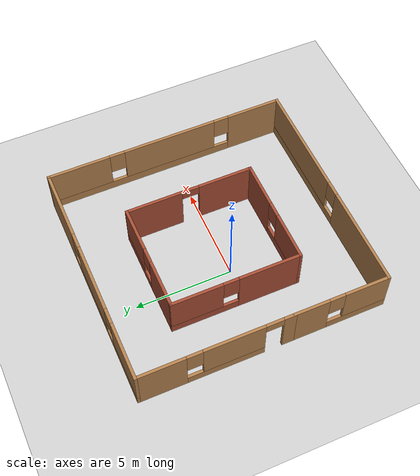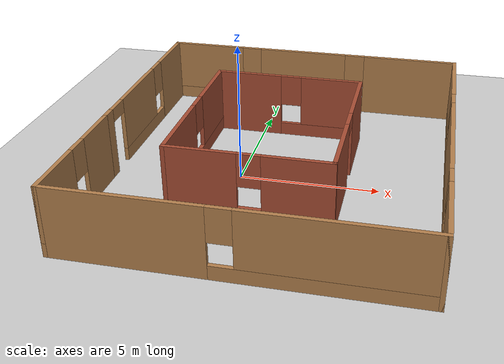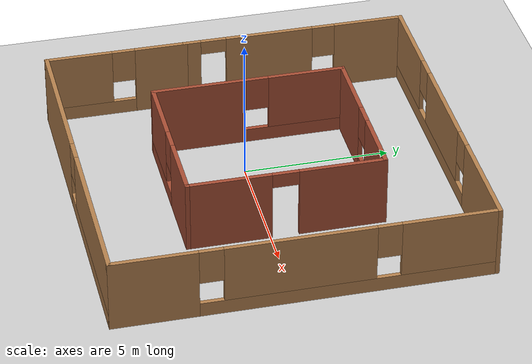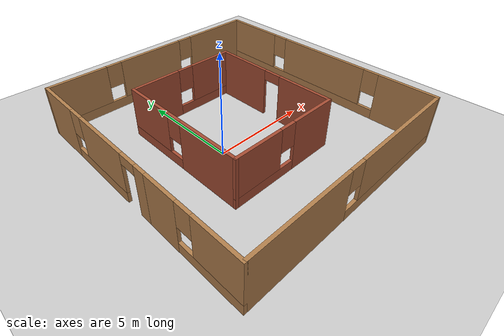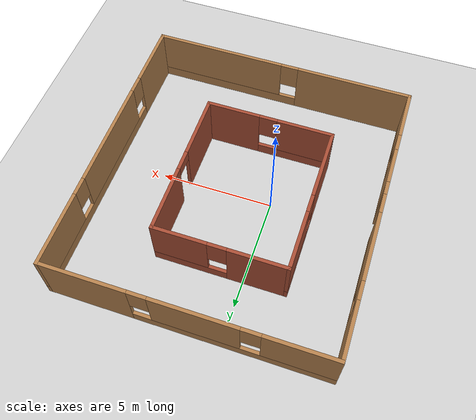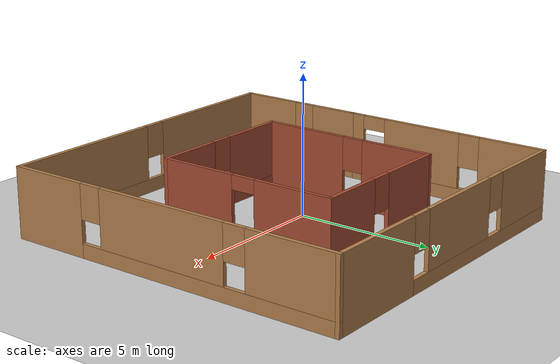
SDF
<sdf version="1.7">
 <world name="default">
  <light name="sun" type="directional">
   <pose>0 0 10 0 -0 0</pose>
   <diffuse>0.8 0.8 0.8 1</diffuse>
   <specular>0.2 0.2 0.2 1</specular>
   <attenuation>
    <range>1000</range>
    <constant>0.9</constant>
    <linear>0.01</linear>
    <quadratic>0.001</quadratic>
   </attenuation>
   <direction>-0.5 0.1 -0.9</direction>
   <spot><inner_angle>0</inner_angle><outer_angle>0</outer_angle><falloff>0</falloff></spot>
  </light>
  <model name="ground_plane">
   <static>1</static>
   <link name="link">
    <collision name="collision">
     <geometry><plane><normal>0 0 1</normal><size>100 100</size></plane></geometry>
     <surface>
      <contact><collide_bitmask>65535</collide_bitmask></contact>
      <friction><ode><mu>100</mu><mu2>50</mu2></ode></friction>
     </surface>
    </collision>
    <visual name="visual">
     <cast_shadows>0</cast_shadows>
     <geometry><plane><normal>0 0 1</normal><size>100 100</size></plane></geometry>
     <material>
      <script><uri>file://media/materials/scripts/gazebo.material</uri><name>Gazebo/Grey</name></script>
     </material>
    </visual>
   </link>
  </model>
  <gravity>0 0 -9.8</gravity>
  <magnetic_field>6e-06 2.3e-05 -4.2e-05</magnetic_field>
  <atmosphere type="adiabatic"/>
  <physics type="ode">
   <max_step_size>0.001</max_step_size>
   <real_time_factor>1</real_time_factor>
   <real_time_update_rate>1000</real_time_update_rate>
  </physics>
  <scene><ambient>0.4 0.4 0.4 1</ambient><background>0.7 0.7 0.7 1</background><shadows>1</shadows></scene>
  <audio><device>default</device></audio>
  <spherical_coordinates>
   <surface_model>EARTH_WGS84</surface_model>
   <latitude_deg>0</latitude_deg>
   <longitude_deg>0</longitude_deg>
   <elevation>0</elevation>
   <heading_deg>0</heading_deg>
  </spherical_coordinates>
  <model name="mine">
   <pose>1.36682 0.354875 0 0 -0 0</pose>
   <link name="Wall_1">
    <pose>-5.925 -3.875 0 0 -0 -1.5708</pose>
    <visual name="Wall_1_Visual_0">
     <pose>-1.57271 0 1.25 0 -0 0</pose>
     <geometry><box><size>1.85458 0.15 2.5</size></box></geometry>
     <material>
      <script><uri>file://media/materials/scripts/gazebo.material</uri><name>Gazebo/Wood</name></script>
      <ambient>1 1 1 1</ambient>
     </material>
     <meta><layer>0</layer></meta>
    </visual>
    <collision name="Wall_1_Collision_0">
     <geometry><box><size>1.85458 0.15 2.5</size></box></geometry>
     <pose>-1.57271 0 1.25 0 -0 0</pose>
    </collision>
    <visual name="Wall_1_Visual_1">
     <pose>0.927292 0 0.25 0 -0 0</pose>
     <geometry><box><size>3.14542 0.15 0.5</size></box></geometry>
     <material>
      <script><uri>file://media/materials/scripts/gazebo.material</uri><name>Gazebo/Wood</name></script>
      <ambient>1 1 1 1</ambient>
     </material>
     <meta><layer>0</layer></meta>
    </visual>
    <collision name="Wall_1_Collision_1">
     <geometry><box><size>3.14542 0.15 0.5</size></box></geometry>
     <pose>0.927292 0 0.25 0 -0 0</pose>
    </collision>
    <visual name="Wall_1_Visual_2">
     <pose>1.32729 0 1.5 0 -0 0</pose>
     <geometry><box><size>2.34542 0.15 2</size></box></geometry>
     <material>
      <script><uri>file://media/materials/scripts/gazebo.material</uri><name>Gazebo/Wood</name></script>
      <ambient>1 1 1 1</ambient>
     </material>
     <meta><layer>0</layer></meta>
    </visual>
    <collision name="Wall_1_Collision_2">
     <geometry><box><size>2.34542 0.15 2</size></box></geometry>
     <pose>1.32729 0 1.5 0 -0 0</pose>
    </collision>
    <visual name="Wall_1_Visual_3">
     <pose>-0.245417 0 1.9 0 -0 0</pose>
     <geometry><box><size>0.8 0.15 1.2</size></box></geometry>
     <material>
      <script><uri>file://media/materials/scripts/gazebo.material</uri><name>Gazebo/Wood</name></script>
      <ambient>1 1 1 1</ambient>
     </material>
     <meta><layer>0</layer></meta>
    </visual>
    <collision name="Wall_1_Collision_3">
     <geometry><box><size>0.8 0.15 1.2</size></box></geometry>
     <pose>-0.245417 0 1.9 0 -0 0</pose>
    </collision>
   </link>
   <link name="Wall_10">
    <pose>-3.18788 0.190621 0 0 -0 1.5708</pose>
    <visual name="Wall_10_Visual_0">
     <pose>-1.74602 0 1.25 0 -0 0</pose>
     <geometry><box><size>3.25796 0.15 2.5</size></box></geometry>
     <material>
      <script><uri>file://media/materials/scripts/gazebo.material</uri><name>Gazebo/Bricks</name></script>
      <ambient>1 1 1 1</ambient>
     </material>
     <meta><layer>0</layer></meta>
    </visual>
    <collision name="Wall_10_Collision_0">
     <geometry><box><size>3.25796 0.15 2.5</size></box></geometry>
     <pose>-1.74602 0 1.25 0 -0 0</pose>
    </collision>
    <visual name="Wall_10_Visual_1">
     <pose>1.62898 0 0.25 0 -0 0</pose>
     <geometry><box><size>3.49204 0.15 0.5</size></box></geometry>
     <material>
      <script><uri>file://media/materials/scripts/gazebo.material</uri><name>Gazebo/Bricks</name></script>
      <ambient>1 1 1 1</ambient>
     </material>
     <meta><layer>0</layer></meta>
    </visual>
    <collision name="Wall_10_Collision_1">
     <geometry><box><size>3.49204 0.15 0.5</size></box></geometry>
     <pose>1.62898 0 0.25 0 -0 0</pose>
    </collision>
    <visual name="Wall_10_Visual_2">
     <pose>2.02898 0 1.5 0 -0 0</pose>
     <geometry><box><size>2.69204 0.15 2</size></box></geometry>
     <material>
      <script><uri>file://media/materials/scripts/gazebo.material</uri><name>Gazebo/Bricks</name></script>
      <ambient>1 1 1 1</ambient>
     </material>
     <meta><layer>0</layer></meta>
    </visual>
    <collision name="Wall_10_Collision_2">
     <geometry><box><size>2.69204 0.15 2</size></box></geometry>
     <pose>2.02898 0 1.5 0 -0 0</pose>
    </collision>
    <visual name="Wall_10_Visual_3">
     <pose>0.282964 0 1.9 0 -0 0</pose>
     <geometry><box><size>0.8 0.15 1.2</size></box></geometry>
     <material>
      <script><uri>file://media/materials/scripts/gazebo.material</uri><name>Gazebo/Bricks</name></script>
      <ambient>1 1 1 1</ambient>
     </material>
     <meta><layer>0</layer></meta>
    </visual>
    <collision name="Wall_10_Collision_3">
     <geometry><box><size>0.8 0.15 1.2</size></box></geometry>
     <pose>0.282964 0 1.9 0 -0 0</pose>
    </collision>
   </link>
   <link name="Wall_2">
    <pose>-0 -6.3 0 0 -0 0</pose>
    <visual name="Wall_2_Visual_0">
     <pose>-3.38599 0 1.25 0 -0 0</pose>
     <geometry><box><size>5.22802 0.15 2.5</size></box></geometry>
     <material>
      <script><uri>file://media/materials/scripts/gazebo.material</uri><name>Gazebo/Wood</name></script>
      <ambient>1 1 1 1</ambient>
     </material>
     <meta><layer>0</layer></meta>
    </visual>
    <collision name="Wall_2_Collision_0">
     <geometry><box><size>5.22802 0.15 2.5</size></box></geometry>
     <pose>-3.38599 0 1.25 0 -0 0</pose>
    </collision>
    <visual name="Wall_2_Visual_1">
     <pose>2.61401 0 0.25 0 -0 0</pose>
     <geometry><box><size>6.77198 0.15 0.5</size></box></geometry>
     <material>
      <script><uri>file://media/materials/scripts/gazebo.material</uri><name>Gazebo/Wood</name></script>
      <ambient>1 1 1 1</ambient>
     </material>
     <meta><layer>0</layer></meta>
    </visual>
    <collision name="Wall_2_Collision_1">
     <geometry><box><size>6.77198 0.15 0.5</size></box></geometry>
     <pose>2.61401 0 0.25 0 -0 0</pose>
    </collision>
    <visual name="Wall_2_Visual_2">
     <pose>3.01401 0 1.5 0 -0 0</pose>
     <geometry><box><size>5.97198 0.15 2</size></box></geometry>
     <material>
      <script><uri>file://media/materials/scripts/gazebo.material</uri><name>Gazebo/Wood</name></script>
      <ambient>1 1 1 1</ambient>
     </material>
     <meta><layer>0</layer></meta>
    </visual>
    <collision name="Wall_2_Collision_2">
     <geometry><box><size>5.97198 0.15 2</size></box></geometry>
     <pose>3.01401 0 1.5 0 -0 0</pose>
    </collision>
    <visual name="Wall_2_Visual_3">
     <pose>-0.37198 0 1.9 0 -0 0</pose>
     <geometry><box><size>0.8 0.15 1.2</size></box></geometry>
     <material>
      <script><uri>file://media/materials/scripts/gazebo.material</uri><name>Gazebo/Wood</name></script>
      <ambient>1 1 1 1</ambient>
     </material>
     <meta><layer>0</layer></meta>
    </visual>
    <collision name="Wall_2_Collision_3">
     <geometry><box><size>0.8 0.15 1.2</size></box></geometry>
     <pose>-0.37198 0 1.9 0 -0 0</pose>
    </collision>
   </link>
   <link name="Wall_3">
    <pose>5.925 -0 0 0 -0 1.5708</pose>
    <visual name="Wall_3_Visual_0">
     <pose>-4.9207 0 1.25 0 -0 0</pose>
     <geometry><box><size>2.9086 0.15 2.5</size></box></geometry>
     <material>
      <script><uri>file://media/materials/scripts/gazebo.material</uri><name>Gazebo/Wood</name></script>
      <ambient>1 1 1 1</ambient>
     </material>
     <meta><layer>0</layer></meta>
    </visual>
    <collision name="Wall_3_Collision_0">
     <geometry><box><size>2.9086 0.15 2.5</size></box></geometry>
     <pose>-4.9207 0 1.25 0 -0 0</pose>
    </collision>
    <visual name="Wall_3_Visual_1">
     <pose>1.4543 0 0.25 0 -0 0</pose>
     <geometry><box><size>9.8414 0.15 0.5</size></box></geometry>
     <material>
      <script><uri>file://media/materials/scripts/gazebo.material</uri><name>Gazebo/Wood</name></script>
      <ambient>1 1 1 1</ambient>
     </material>
     <meta><layer>0</layer></meta>
    </visual>
    <collision name="Wall_3_Collision_1">
     <geometry><box><size>9.8414 0.15 0.5</size></box></geometry>
     <pose>1.4543 0 0.25 0 -0 0</pose>
    </collision>
    <visual name="Wall_3_Visual_2">
     <pose>-0.190162 0 1.5 0 -0 0</pose>
     <geometry><box><size>4.95248 0.15 2</size></box></geometry>
     <material>
      <script><uri>file://media/materials/scripts/gazebo.material</uri><name>Gazebo/Wood</name></script>
      <ambient>1 1 1 1</ambient>
     </material>
     <meta><layer>0</layer></meta>
    </visual>
    <collision name="Wall_3_Collision_2">
     <geometry><box><size>4.95248 0.15 2</size></box></geometry>
     <pose>-0.190162 0 1.5 0 -0 0</pose>
    </collision>
    <visual name="Wall_3_Visual_3">
     <pose>4.73054 0 1.5 0 -0 0</pose>
     <geometry><box><size>3.28892 0.15 2</size></box></geometry>
     <material>
      <script><uri>file://media/materials/scripts/gazebo.material</uri><name>Gazebo/Wood</name></script>
      <ambient>1 1 1 1</ambient>
     </material>
     <meta><layer>0</layer></meta>
    </visual>
    <collision name="Wall_3_Collision_3">
     <geometry><box><size>3.28892 0.15 2</size></box></geometry>
     <pose>4.73054 0 1.5 0 -0 0</pose>
    </collision>
    <visual name="Wall_3_Visual_4">
     <pose>-3.0664 0 1.9 0 -0 0</pose>
     <geometry><box><size>0.8 0.15 1.2</size></box></geometry>
     <material>
      <script><uri>file://media/materials/scripts/gazebo.material</uri><name>Gazebo/Wood</name></script>
      <ambient>1 1 1 1</ambient>
     </material>
     <meta><layer>0</layer></meta>
    </visual>
    <collision name="Wall_3_Collision_4">
     <geometry><box><size>0.8 0.15 1.2</size></box></geometry>
     <pose>-3.0664 0 1.9 0 -0 0</pose>
    </collision>
    <visual name="Wall_3_Visual_5">
     <pose>2.68608 0 1.9 0 -0 0</pose>
     <geometry><box><size>0.8 0.15 1.2</size></box></geometry>
     <material>
      <script><uri>file://media/materials/scripts/gazebo.material</uri><name>Gazebo/Wood</name></script>
      <ambient>1 1 1 1</ambient>
     </material>
     <meta><layer>0</layer></meta>
    </visual>
    <collision name="Wall_3_Collision_5">
     <geometry><box><size>0.8 0.15 1.2</size></box></geometry>
     <pose>2.68608 0 1.9 0 -0 0</pose>
    </collision>
   </link>
   <link name="Wall_4">
    <pose>-0 6.3 0 0 -0 3.14159</pose>
    <visual name="Wall_4_Visual_0">
     <pose>-4.12026 0 1.25 0 -0 0</pose>
     <geometry><box><size>3.75949 0.15 2.5</size></box></geometry>
     <material>
      <script><uri>file://media/materials/scripts/gazebo.material</uri><name>Gazebo/Wood</name></script>
      <ambient>1 1 1 1</ambient>
     </material>
     <meta><layer>0</layer></meta>
    </visual>
    <collision name="Wall_4_Collision_0">
     <geometry><box><size>3.75949 0.15 2.5</size></box></geometry>
     <pose>-4.12026 0 1.25 0 -0 0</pose>
    </collision>
    <visual name="Wall_4_Visual_1">
     <pose>1.87974 0 0.25 0 -0 0</pose>
     <geometry><box><size>8.24051 0.15 0.5</size></box></geometry>
     <material>
      <script><uri>file://media/materials/scripts/gazebo.material</uri><name>Gazebo/Wood</name></script>
      <ambient>1 1 1 1</ambient>
     </material>
     <meta><layer>0</layer></meta>
    </visual>
    <collision name="Wall_4_Collision_1">
     <geometry><box><size>8.24051 0.15 0.5</size></box></geometry>
     <pose>1.87974 0 0.25 0 -0 0</pose>
    </collision>
    <visual name="Wall_4_Visual_2">
     <pose>0.37198 0 1.5 0 -0 0</pose>
     <geometry><box><size>3.62499 0.15 2</size></box></geometry>
     <material>
      <script><uri>file://media/materials/scripts/gazebo.material</uri><name>Gazebo/Wood</name></script>
      <ambient>1 1 1 1</ambient>
     </material>
     <meta><layer>0</layer></meta>
    </visual>
    <collision name="Wall_4_Collision_2">
     <geometry><box><size>3.62499 0.15 2</size></box></geometry>
     <pose>0.37198 0 1.5 0 -0 0</pose>
    </collision>
    <visual name="Wall_4_Visual_3">
     <pose>4.49224 0 1.5 0 -0 0</pose>
     <geometry><box><size>3.01553 0.15 2</size></box></geometry>
     <material>
      <script><uri>file://media/materials/scripts/gazebo.material</uri><name>Gazebo/Wood</name></script>
      <ambient>1 1 1 1</ambient>
     </material>
     <meta><layer>0</layer></meta>
    </visual>
    <collision name="Wall_4_Collision_3">
     <geometry><box><size>3.01553 0.15 2</size></box></geometry>
     <pose>4.49224 0 1.5 0 -0 0</pose>
    </collision>
    <visual name="Wall_4_Visual_4">
     <pose>-1.84051 0 1.9 0 -0 0</pose>
     <geometry><box><size>0.8 0.15 1.2</size></box></geometry>
     <material>
      <script><uri>file://media/materials/scripts/gazebo.material</uri><name>Gazebo/Wood</name></script>
      <ambient>1 1 1 1</ambient>
     </material>
     <meta><layer>0</layer></meta>
    </visual>
    <collision name="Wall_4_Collision_4">
     <geometry><box><size>0.8 0.15 1.2</size></box></geometry>
     <pose>-1.84051 0 1.9 0 -0 0</pose>
    </collision>
    <visual name="Wall_4_Visual_5">
     <pose>2.58447 0 1.9 0 -0 0</pose>
     <geometry><box><size>0.8 0.15 1.2</size></box></geometry>
     <material>
      <script><uri>file://media/materials/scripts/gazebo.material</uri><name>Gazebo/Wood</name></script>
      <ambient>1 1 1 1</ambient>
     </material>
     <meta><layer>0</layer></meta>
    </visual>
    <collision name="Wall_4_Collision_5">
     <geometry><box><size>0.8 0.15 1.2</size></box></geometry>
     <pose>2.58447 0 1.9 0 -0 0</pose>
    </collision>
   </link>
   <link name="Wall_5">
    <pose>-5.925 2.425 0 0 -0 -1.5708</pose>
    <visual name="Wall_5_Visual_0">
     <pose>-2.70781 0 1.25 0 -0 0</pose>
     <geometry><box><size>2.48438 0.15 2.5</size></box></geometry>
     <material>
      <script><uri>file://media/materials/scripts/gazebo.material</uri><name>Gazebo/Wood</name></script>
      <ambient>1 1 1 1</ambient>
     </material>
     <meta><layer>0</layer></meta>
    </visual>
    <collision name="Wall_5_Collision_0">
     <geometry><box><size>2.48438 0.15 2.5</size></box></geometry>
     <pose>-2.70781 0 1.25 0 -0 0</pose>
    </collision>
    <visual name="Wall_5_Visual_1">
     <pose>3.63832 0 1.25 0 -0 0</pose>
     <geometry><box><size>0.623361 0.15 2.5</size></box></geometry>
     <material>
      <script><uri>file://media/materials/scripts/gazebo.material</uri><name>Gazebo/Wood</name></script>
      <ambient>1 1 1 1</ambient>
     </material>
     <meta><layer>0</layer></meta>
    </visual>
    <collision name="Wall_5_Collision_1">
     <geometry><box><size>0.623361 0.15 2.5</size></box></geometry>
     <pose>3.63832 0 1.25 0 -0 0</pose>
    </collision>
    <visual name="Wall_5_Visual_2">
     <pose>0.480509 0 0.25 0 -0 0</pose>
     <geometry><box><size>3.89226 0.15 0.5</size></box></geometry>
     <material>
      <script><uri>file://media/materials/scripts/gazebo.material</uri><name>Gazebo/Wood</name></script>
      <ambient>1 1 1 1</ambient>
     </material>
     <meta><layer>0</layer></meta>
    </visual>
    <collision name="Wall_5_Collision_2">
     <geometry><box><size>3.89226 0.15 0.5</size></box></geometry>
     <pose>0.480509 0 0.25 0 -0 0</pose>
    </collision>
    <visual name="Wall_5_Visual_3">
     <pose>0.880509 0 1.5 0 -0 0</pose>
     <geometry><box><size>3.09226 0.15 2</size></box></geometry>
     <material>
      <script><uri>file://media/materials/scripts/gazebo.material</uri><name>Gazebo/Wood</name></script>
      <ambient>1 1 1 1</ambient>
     </material>
     <meta><layer>0</layer></meta>
    </visual>
    <collision name="Wall_5_Collision_3">
     <geometry><box><size>3.09226 0.15 2</size></box></geometry>
     <pose>0.880509 0 1.5 0 -0 0</pose>
    </collision>
    <visual name="Wall_5_Visual_4">
     <pose>-1.06562 0 1.9 0 -0 0</pose>
     <geometry><box><size>0.8 0.15 1.2</size></box></geometry>
     <material>
      <script><uri>file://media/materials/scripts/gazebo.material</uri><name>Gazebo/Wood</name></script>
      <ambient>1 1 1 1</ambient>
     </material>
     <meta><layer>0</layer></meta>
    </visual>
    <collision name="Wall_5_Collision_4">
     <geometry><box><size>0.8 0.15 1.2</size></box></geometry>
     <pose>-1.06562 0 1.9 0 -0 0</pose>
    </collision>
    <visual name="Wall_5_Visual_5">
     <pose>2.87664 0 2.25 0 -0 0</pose>
     <geometry><box><size>0.9 0.15 0.5</size></box></geometry>
     <material>
      <script><uri>file://media/materials/scripts/gazebo.material</uri><name>Gazebo/Wood</name></script>
      <ambient>1 1 1 1</ambient>
     </material>
     <meta><layer>0</layer></meta>
    </visual>
    <collision name="Wall_5_Collision_5">
     <geometry><box><size>0.9 0.15 0.5</size></box></geometry>
     <pose>2.87664 0 2.25 0 -0 0</pose>
    </collision>
   </link>
   <link name="Wall_7">
    <pose>-0.387881 3.49062 0 0 -0 0</pose>
    <visual name="Wall_7_Visual_0">
     <pose>-1.58932 0 1.25 0 -0 0</pose>
     <geometry><box><size>2.57135 0.15 2.5</size></box></geometry>
     <material>
      <script><uri>file://media/materials/scripts/gazebo.material</uri><name>Gazebo/Bricks</name></script>
      <ambient>1 1 1 1</ambient>
     </material>
     <meta><layer>0</layer></meta>
    </visual>
    <collision name="Wall_7_Collision_0">
     <geometry><box><size>2.57135 0.15 2.5</size></box></geometry>
     <pose>-1.58932 0 1.25 0 -0 0</pose>
    </collision>
    <visual name="Wall_7_Visual_1">
     <pose>1.28568 0 0.25 0 -0 0</pose>
     <geometry><box><size>3.17865 0.15 0.5</size></box></geometry>
     <material>
      <script><uri>file://media/materials/scripts/gazebo.material</uri><name>Gazebo/Bricks</name></script>
      <ambient>1 1 1 1</ambient>
     </material>
     <meta><layer>0</layer></meta>
    </visual>
    <collision name="Wall_7_Collision_1">
     <geometry><box><size>3.17865 0.15 0.5</size></box></geometry>
     <pose>1.28568 0 0.25 0 -0 0</pose>
    </collision>
    <visual name="Wall_7_Visual_2">
     <pose>1.68568 0 1.5 0 -0 0</pose>
     <geometry><box><size>2.37865 0.15 2</size></box></geometry>
     <material>
      <script><uri>file://media/materials/scripts/gazebo.material</uri><name>Gazebo/Bricks</name></script>
      <ambient>1 1 1 1</ambient>
     </material>
     <meta><layer>0</layer></meta>
    </visual>
    <collision name="Wall_7_Collision_2">
     <geometry><box><size>2.37865 0.15 2</size></box></geometry>
     <pose>1.68568 0 1.5 0 -0 0</pose>
    </collision>
    <visual name="Wall_7_Visual_3">
     <pose>0.096354 0 1.9 0 -0 0</pose>
     <geometry><box><size>0.8 0.15 1.2</size></box></geometry>
     <material>
      <script><uri>file://media/materials/scripts/gazebo.material</uri><name>Gazebo/Bricks</name></script>
      <ambient>1 1 1 1</ambient>
     </material>
     <meta><layer>0</layer></meta>
    </visual>
    <collision name="Wall_7_Collision_3">
     <geometry><box><size>0.8 0.15 1.2</size></box></geometry>
     <pose>0.096354 0 1.9 0 -0 0</pose>
    </collision>
   </link>
   <link name="Wall_8">
    <pose>2.41212 0.190621 0 0 -0 -1.5708</pose>
    <visual name="Wall_8_Visual_0">
     <pose>-1.89307 0 1.25 0 -0 0</pose>
     <geometry><box><size>2.96385 0.15 2.5</size></box></geometry>
     <material>
      <script><uri>file://media/materials/scripts/gazebo.material</uri><name>Gazebo/Bricks</name></script>
      <ambient>1 1 1 1</ambient>
     </material>
     <meta><layer>0</layer></meta>
    </visual>
    <collision name="Wall_8_Collision_0">
     <geometry><box><size>2.96385 0.15 2.5</size></box></geometry>
     <pose>-1.89307 0 1.25 0 -0 0</pose>
    </collision>
    <visual name="Wall_8_Visual_1">
     <pose>1.93193 0 1.25 0 -0 0</pose>
     <geometry><box><size>2.88615 0.15 2.5</size></box></geometry>
     <material>
      <script><uri>file://media/materials/scripts/gazebo.material</uri><name>Gazebo/Bricks</name></script>
      <ambient>1 1 1 1</ambient>
     </material>
     <meta><layer>0</layer></meta>
    </visual>
    <collision name="Wall_8_Collision_1">
     <geometry><box><size>2.88615 0.15 2.5</size></box></geometry>
     <pose>1.93193 0 1.25 0 -0 0</pose>
    </collision>
    <visual name="Wall_8_Visual_2">
     <pose>0.038853 0 2.25 0 -0 0</pose>
     <geometry><box><size>0.9 0.15 0.5</size></box></geometry>
     <material>
      <script><uri>file://media/materials/scripts/gazebo.material</uri><name>Gazebo/Bricks</name></script>
      <ambient>1 1 1 1</ambient>
     </material>
     <meta><layer>0</layer></meta>
    </visual>
    <collision name="Wall_8_Collision_2">
     <geometry><box><size>0.9 0.15 0.5</size></box></geometry>
     <pose>0.038853 0 2.25 0 -0 0</pose>
    </collision>
   </link>
   <link name="Wall_9">
    <pose>-0.387881 -3.10938 0 0 -0 3.14159</pose>
    <visual name="Wall_9_Visual_0">
     <pose>-1.66556 0 1.25 0 -0 0</pose>
     <geometry><box><size>2.41887 0.15 2.5</size></box></geometry>
     <material>
      <script><uri>file://media/materials/scripts/gazebo.material</uri><name>Gazebo/Bricks</name></script>
      <ambient>1 1 1 1</ambient>
     </material>
     <meta><layer>0</layer></meta>
    </visual>
    <collision name="Wall_9_Collision_0">
     <geometry><box><size>2.41887 0.15 2.5</size></box></geometry>
     <pose>-1.66556 0 1.25 0 -0 0</pose>
    </collision>
    <visual name="Wall_9_Visual_1">
     <pose>1.20944 0 0.25 0 -0 0</pose>
     <geometry><box><size>3.33113 0.15 0.5</size></box></geometry>
     <material>
      <script><uri>file://media/materials/scripts/gazebo.material</uri><name>Gazebo/Bricks</name></script>
      <ambient>1 1 1 1</ambient>
     </material>
     <meta><layer>0</layer></meta>
    </visual>
    <collision name="Wall_9_Collision_1">
     <geometry><box><size>3.33113 0.15 0.5</size></box></geometry>
     <pose>1.20944 0 0.25 0 -0 0</pose>
    </collision>
    <visual name="Wall_9_Visual_2">
     <pose>1.60944 0 1.5 0 -0 0</pose>
     <geometry><box><size>2.53113 0.15 2</size></box></geometry>
     <material>
      <script><uri>file://media/materials/scripts/gazebo.material</uri><name>Gazebo/Bricks</name></script>
      <ambient>1 1 1 1</ambient>
     </material>
     <meta><layer>0</layer></meta>
    </visual>
    <collision name="Wall_9_Collision_2">
     <geometry><box><size>2.53113 0.15 2</size></box></geometry>
     <pose>1.60944 0 1.5 0 -0 0</pose>
    </collision>
    <visual name="Wall_9_Visual_3">
     <pose>-0.056127 0 1.9 0 -0 0</pose>
     <geometry><box><size>0.8 0.15 1.2</size></box></geometry>
     <material>
      <script><uri>file://media/materials/scripts/gazebo.material</uri><name>Gazebo/Bricks</name></script>
      <ambient>1 1 1 1</ambient>
     </material>
     <meta><layer>0</layer></meta>
    </visual>
    <collision name="Wall_9_Collision_3">
     <geometry><box><size>0.8 0.15 1.2</size></box></geometry>
     <pose>-0.056127 0 1.9 0 -0 0</pose>
    </collision>
   </link>
   <static>1</static>
  </model>
 </world>
</sdf>
